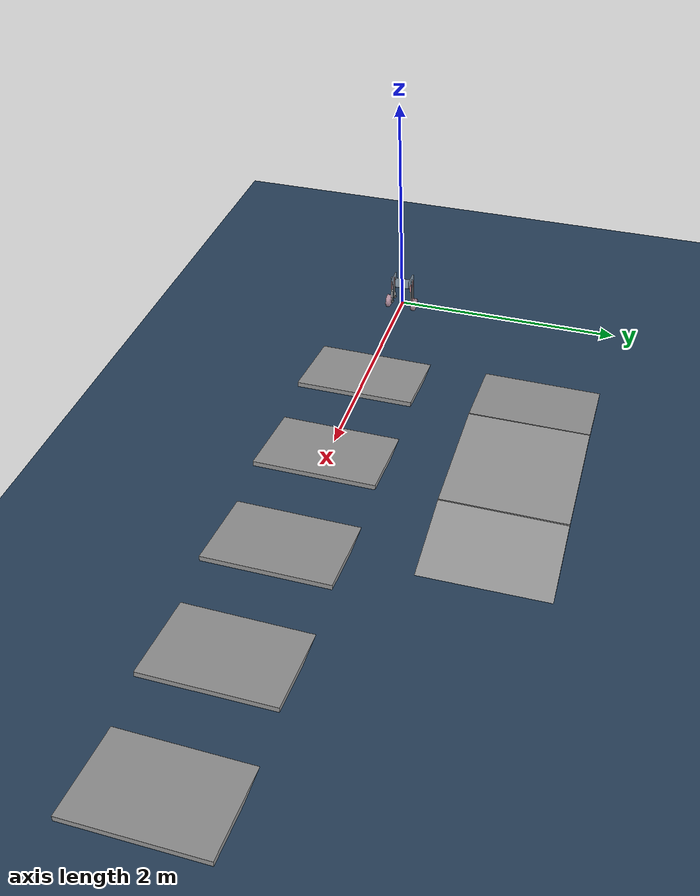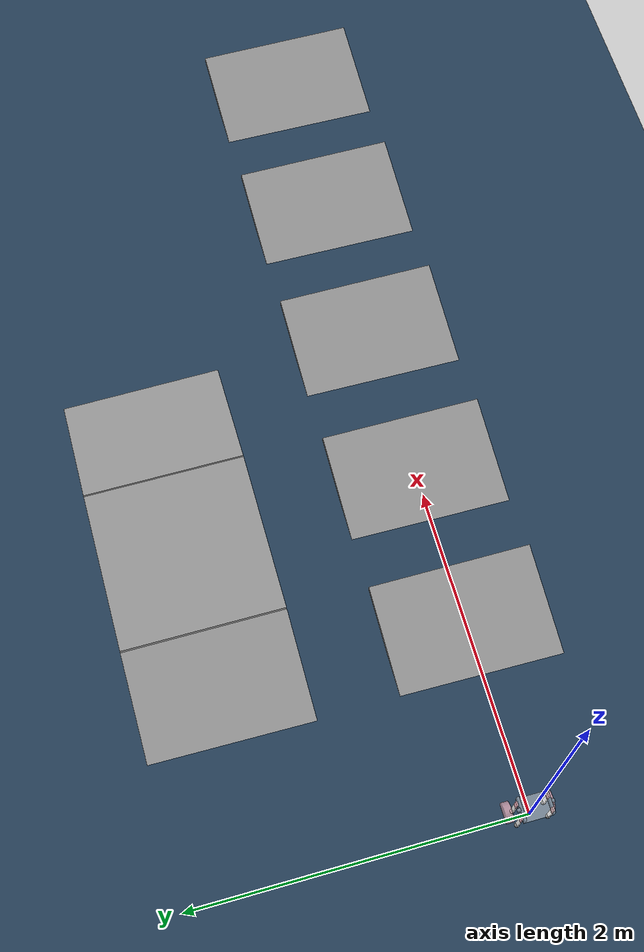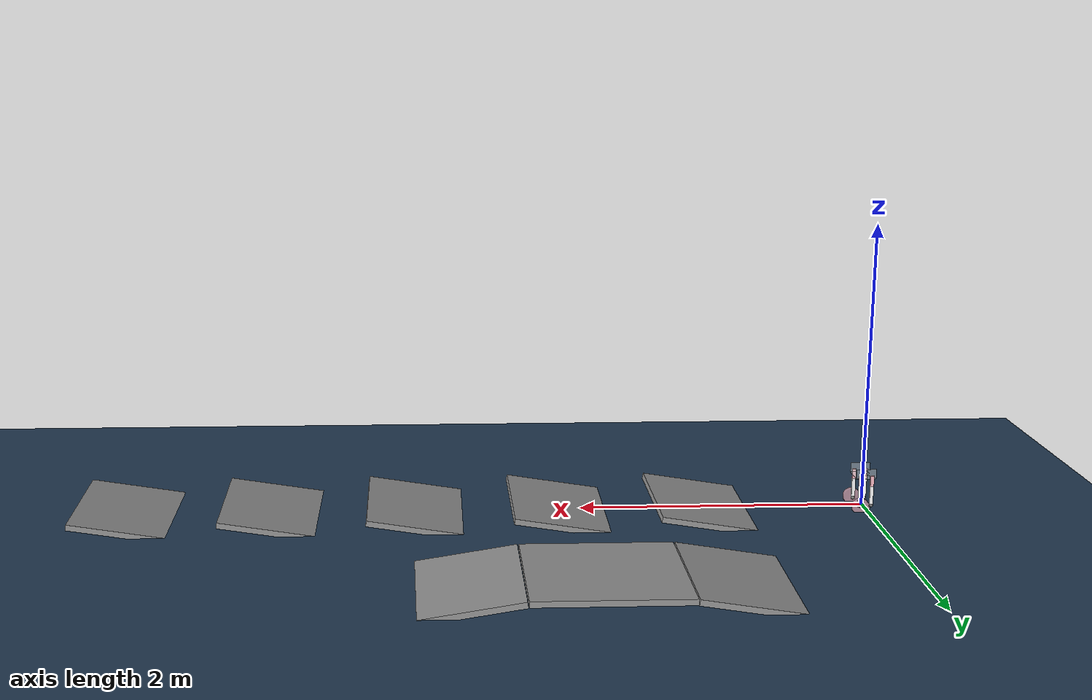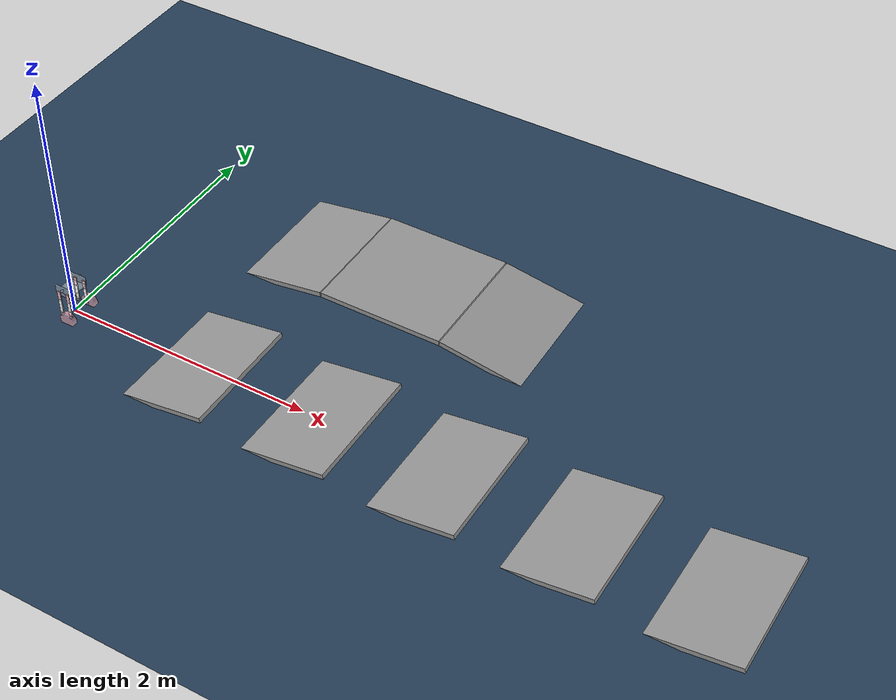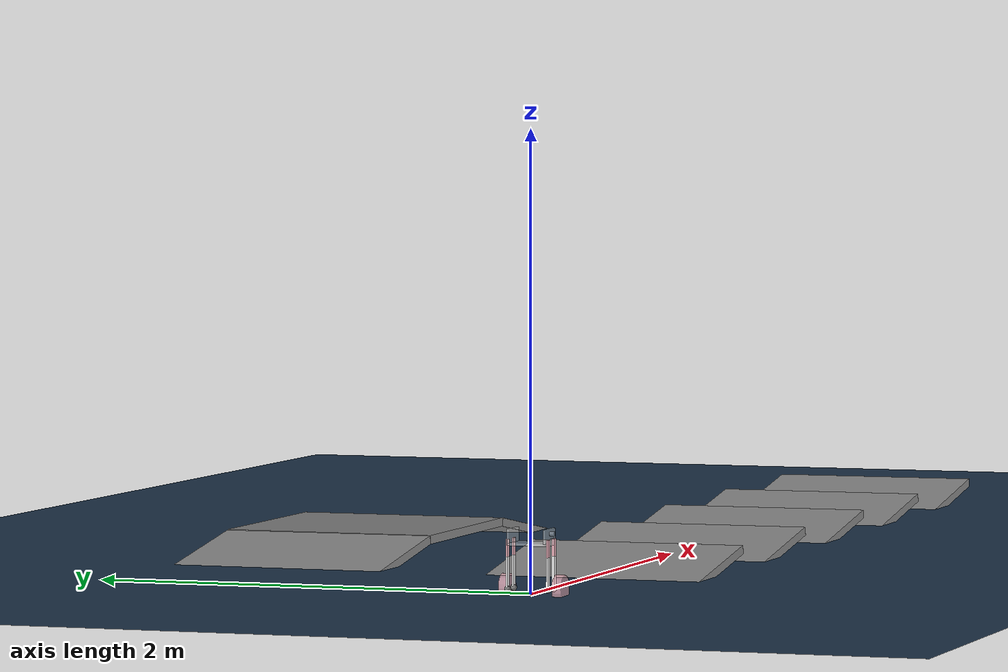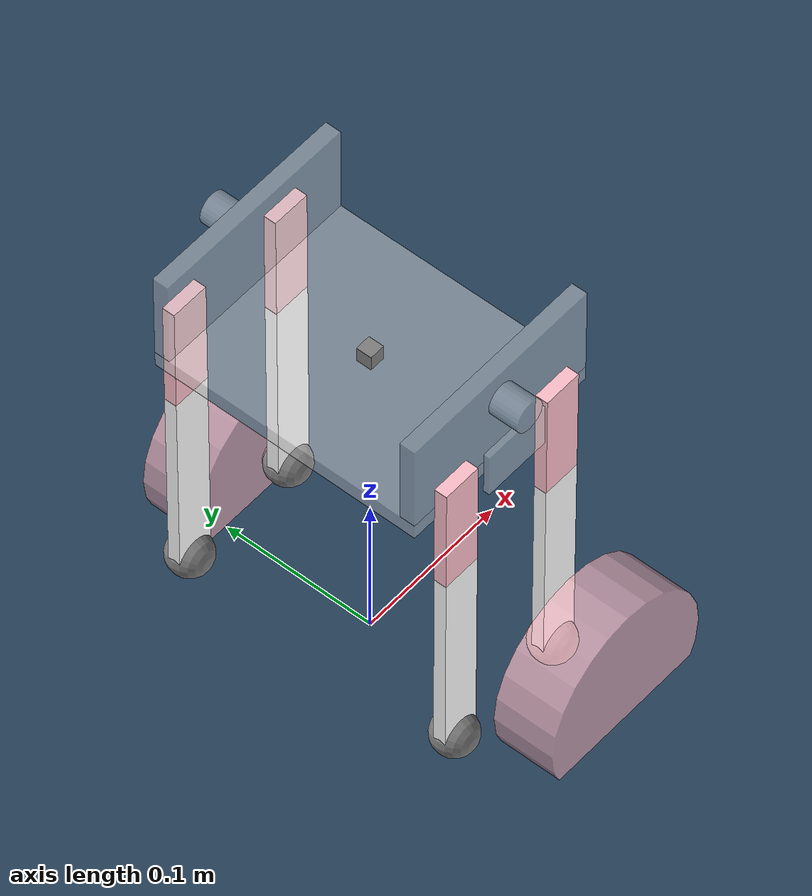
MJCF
<?xml version="1.0" encoding="utf-8"?>
<mujoco model="wheel_bipedal_robot_v1">
  <compiler angle="radian" autolimits="true"/>
  <option timestep="0.002" iterations="50" tolerance="1e-10"/>

  <asset>
    <texture name="texplane" type="2d" builtin="checker" rgb1=".2 .3 .4" rgb2=".1 .2 .3" width="512" height="512" mark="none"/>
    <material name="matplane" reflectance="0.2" texture="texplane" texrepeat="1 1" texuniform="true"/>
  </asset>
  <include file="obstacles.xml"/>
  <worldbody>
    <geom name="floor" pos="0 0 0" size="0 0 0.5" type="plane" material="matplane" condim="3"/>
    <light directional="true" diffuse=".8 .8 .8" specular=".2 .2 .2" pos="0 0 5" dir="0 0 -1"/>
    <!-- 机器人启动时候的支撑块 -->
    <body name="torso" pos="0.0 0.0 0.25">
      <freejoint />
      <site name="imu"  type="box" pos="0 0 -0.02" size="0.005 0.005 0.005"/>
      <geom name="torso_base" type="box" mass="0.823" pos="0 0 -0.03" size="0.068 0.0875 0.005" rgba="1 1 1 0.4" />
      <geom name="torso_front" type="box" mass="0.824" pos="0.0 0.0825 0.005" size="0.068 0.005 0.03" rgba="1 1 1 0.4" />
      <geom name="torso_back" type="box" mass="0.824" pos="0.0 -0.0825 0.005" size="0.068 0.005 0.03" rgba="1 1 1 0.4" />

      <!-- ==================== 物理限位块（已打开碰撞，确保参与接触限制） ==================== -->
      <body name="right_limit1" pos="0.0 -0.0915 0.015" quat="0.70710678 0.70710678 0.0 0.0">
        <geom type="cylinder"  name="torso_right_limit1" mass="0.005" pos="0.0 0.0 0.005" size="0.01 0.01 0.01" rgba="1 1 1 0.4" group="0" condim="3"/>
      </body>
      <body name="right_limit2" pos="0.0 -0.0915 -0.02" quat="0.70710678 0.70710678 0.0 0.0">
        <geom type="box" name="torso_right_limit2" mass="0.005" pos="0.0 0.0 0.005" size="0.022 0.015 0.002" rgba="1 1 1 0.4" group="0" condim="3"/>
      </body>
      <body name="left_limit1" pos="0.0 0.0915 0.015" quat="0.70710678 0.70710678 0.0 0.0">
        <geom type="cylinder" name="torso_left_limit1" mass="0.005" pos="0.0 0.0 -0.005" size="0.01 0.01 0.01" rgba="1 1 1 0.4" group="0" condim="3"/>
      </body>
      <body name="left_limit2" pos="0.0 0.0915 -0.02" quat="0.70710678 0.70710678 0.0 0.0">
        <geom type="box" name="torso_left_limit2" mass="0.005" pos="0.0 0.0 0.003" size="0.022 0.015 0.002" rgba="1 1 1 0.4" group="0" condim="3"/>
      </body>

      <!-- ==================== 右腿 1 ==================== -->
      <body name="right_up_leg_1" pos="0.04 -0.0915 -0.01" quat="4.32978028e-17 -4.32978028e-17  7.07106781e-01 -7.07106781e-01">
        <joint name="joint_right_phi1" pos="0 0 0" axis="0 0 1" damping="0.266" frictionloss="0.005" />
        <geom type="box" mass="0.01914" pos="0.0 0.0375 0.0" size="0.0125 0.0375 0.004" rgba="1 0.752941 0.796078 1" />

        <body name="right_down_leg_1" pos="0.0 0.075 0.0">
          <joint name="right_down_1" pos="0 0 0" axis="0 0 1" ref="0.5"/>
          <geom type="box" mass="0.02314" pos="0.0 0.07 0.0" size="0.0125 0.07 0.004" rgba="1 1 1 1" />
          <site name="right_down_connect_1" size="0.014" pos="0.0 0.14 0.0"/>

          <body name="right_wheel" pos="0.0 0.14 0.03">
            <joint name="right_wheel_torque" pos="0 0 0" axis="0 0 1" damping="0.0597" frictionloss="0.001" />
            <geom name="right_wheel_geom" type="cylinder" mass="0.6" pos="0.0 0.0 0.0" size="0.06 0.02" rgba="1 0.752941 0.796078 0.7" />
          </body>
        </body>
      </body>

      <!-- ==================== 右腿 2 ==================== -->
      <body name="right_up_leg_2" pos="-0.04 -0.0915 -0.01" quat="4.32978028e-17 -4.32978028e-17  7.07106781e-01 -7.07106781e-01">
        <joint name="joint_right_phi4" pos="0 0 0" axis="0 0 1" damping="0.266" frictionloss="0.005" />
        <geom type="box" mass="0.02" pos="0.0 0.0375 0.0" size="0.0125 0.0375 0.004" rgba="1 0.752941 0.796078 1" />

        <body name="right_down_leg_2" pos="0.0 0.075 0.0">
          <joint name="right_down_2" pos="0 0 0" axis="0 0 1"/>
          <geom type="box" mass="0.02314" pos="0.0 0.07 0.0" size="0.0125 0.07 0.004" rgba="1 1 1 1" />
          <site name="right_down_connect_2" size="0.014" pos="0.0 0.14 0.0"/>
        </body>
      </body>

      <!-- ==================== 左腿 1 ==================== -->
      <body name="left_up_leg_1" pos="0.04 0.0915 -0.01" quat="4.32978028e-17 -4.32978028e-17 -7.07106781e-01 -7.07106781e-01">
        <joint name="joint_left_phi1" pos="0 0 0" axis="0 0 1" damping="0.266" frictionloss="0.005" />
        <geom type="box" mass="0.01914" pos="0.0 -0.0375 0.0" size="0.0125 0.0375 0.004" rgba="1 0.752941 0.796078 1" />

        <body name="left_down_leg_1" pos="0.0 -0.075 0.0">
          <joint name="left_down_1" pos="0 0 0" axis="0 0 1"/>
          <geom type="box" mass="0.02314" pos="0.0 -0.07 0.0" size="0.0125 0.07 0.004" rgba="1 1 1 1" />
          <site name="left_down_connect_1" size="0.014" pos="0.0 -0.14 0.0"/>

          <body name="left_wheel" pos="0.0 -0.14 0.03">
            <joint name="left_wheel_torque" pos="0 0 0" axis="0 0 1" damping="0.0597" frictionloss="0.001" />
            <geom name="left_wheel_geom" type="cylinder" mass="0.6" pos="0.0 0.0 0.0" size="0.06 0.02" rgba="1 0.752941 0.796078 0.7" />
          </body>
        </body>
      </body>

      <!-- ==================== 左腿 2 ==================== -->
      <body name="left_up_leg_2" pos="-0.04 0.0915 -0.01" quat="4.32978028e-17 -4.32978028e-17 -7.07106781e-01 -7.07106781e-01">
        <joint name="joint_left_phi4" pos="0 0 0" axis="0 0 1" damping="0.266" frictionloss="0.005" />
        <geom type="box" mass="0.02" pos="0.0 -0.0375 0.0" size="0.0125 0.0375 0.004" rgba="1 0.752941 0.796078 1" />

        <body name="left_down_leg_2" pos="0.0 -0.075 0.0">
          <joint name="left_down_2" pos="0 0 0" axis="0 0 1"/>
          <geom type="box" mass="0.02314" pos="0.0 -0.07 0.0" size="0.0125 0.07 0.004" rgba="1 1 1 1" />
          <site name="left_down_connect_2" size="0.014" pos="0.0 -0.14 0.0"/>
        </body>
      </body>

    </body>
  </worldbody>

  <equality>
    <weld site1="right_down_connect_1" site2="right_down_connect_2" />
    <weld site1="left_down_connect_1" site2="left_down_connect_2" />
  </equality>

  <contact>
    <exclude body1="torso" body2="right_up_leg_1"/>
    <exclude body1="torso" body2="left_up_leg_1"/>

    <exclude body1="right_up_leg_1" body2="right_down_leg_2"/>
    <exclude body1="left_up_leg_1" body2="left_down_leg_2"/>

    <!-- 注意：此处保留原有关节屏蔽，但绝不屏蔽这四个 limit 刚体，使其物理限位生效 -->
    <exclude body1="left_down_leg_1" body2="right_wheel"/>
    <exclude body1="left_down_leg_2" body2="right_wheel"/>

    <exclude body1="right_down_leg_1" body2="left_wheel"/>
    <exclude body1="right_down_leg_2" body2="left_wheel"/>
  </contact>

  <actuator>
    <motor joint="joint_right_phi1" name="right_phi1" ctrlrange="-6.0 6.0" />
    <motor joint="joint_right_phi4" name="right_phi4" ctrlrange="-6.0 6.0" />
    <motor joint="joint_left_phi1"  name="left_phi1"  ctrlrange="-6.0 6.0" />
    <motor joint="joint_left_phi4"  name="left_phi4"  ctrlrange="-6.0 6.0" />

    <motor joint="right_wheel_torque"  name="right_torque"  ctrlrange="-2.0 2.0" />
    <motor joint="left_wheel_torque"  name="left_torque"  ctrlrange="-2.0 2.0" />

  </actuator>

  <sensor>
    <!-- 准备六个电机的编码器 + imu的四元数 角速度 加速度 -->
    <jointpos name="right1_pos" joint="joint_right_phi1" />
    <jointvel name="right1_vel" joint="joint_right_phi1" />
    <jointpos name="right2_pos" joint="joint_right_phi4" />
    <jointvel name="right2_vel" joint="joint_right_phi4" />
    <jointpos name="rightwheel_pos" joint="right_wheel_torque" />
    <jointvel name="rightwheel_vel" joint="right_wheel_torque" />

    <jointpos name="left1_pos" joint="joint_left_phi1" />
    <jointvel name="left1_vel" joint="joint_left_phi1" />
    <jointpos name="left2_pos" joint="joint_left_phi4" />
    <jointvel name="left2_vel" joint="joint_left_phi4" />
    <jointpos name="leftwheel_pos" joint="left_wheel_torque" />
    <jointvel name="leftwheel_vel" joint="left_wheel_torque" />

    <framequat name="orientation" objtype="site" noise="0.001" objname="imu" />
    <framepos name="position" objtype="site" noise="0.001" objname="imu" />

    <gyro name="angular_vel" site="imu" noise="0.005" cutoff="34.9" />
    <accelerometer name="linear_accel" site="imu" noise="0.005" cutoff="157" />
    <velocimeter name="linear_vel" site="imu" noise="0.001" cutoff="30" />
    <magnetometer name="magnetometer" site="imu" />
  </sensor>
</mujoco>

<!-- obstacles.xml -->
<mujoco model="adjustable_angle_ramp">
    <asset>
        <!-- 斜坡材质，方便看清 -->
        <material name="ramp_mat" rgba="0.6 0.6 0.6 1" />
    </asset>

    <worldbody>
        <body name="up" pos="1.0 1.5 0.0" euler="3.14 0.15722222 0">
            <!--
                size 里的三个数分别是: [半长, 半宽, 半厚度]
                这里把厚度设得很薄 (0.02)，长宽设大，它就像一块可以任意倾斜的木板斜坡
            -->
            <geom name="up"
                  type="box"
                  size="0.5 0.5 0.02"
                  material="ramp_mat" />
        </body>
        <body name="mid" pos="2.0 1.5 0.08">
            <!--
                size 里的三个数分别是: [半长, 半宽, 半厚度]
                这里把厚度设得很薄 (0.02)，长宽设大，它就像一块可以任意倾斜的木板斜坡
            -->
            <geom name="mid"
                  type="box"
                  size="0.5 0.5 0.02"
                  material="ramp_mat" />
        </body>
        <body name="down" pos="3 1.5 0.0" euler="3.14 -0.15722222 0">
            <!--
                size 里的三个数分别是: [半长, 半宽, 半厚度]
                这里把厚度设得很薄 (0.02)，长宽设大，它就像一块可以任意倾斜的木板斜坡
            -->
            <geom name="down"
                  type="box"
                  size="0.5 0.5 0.02"
                  material="ramp_mat" />
        </body>
        <!--
            【调节核心】修改 euler 的第二个参数（即围绕 Y 轴旋转），就能改变斜坡角度
            比如: "0 15 0" 代表坡度为 15 度，"0 30 0" 代表 30 度
            pos 可以调整斜坡在主场景中的整体位置
        -->
        <body name="ramp_body1" pos="1.0 0 0.0" euler="3.14 0.15722222 0">
            <!--
                size 里的三个数分别是: [半长, 半宽, 半厚度]
                这里把厚度设得很薄 (0.02)，长宽设大，它就像一块可以任意倾斜的木板斜坡
            -->
            <geom name="ramp_surface1"
                  type="box"
                  size="0.5 0.5 0.02"
                  material="ramp_mat" />
        </body>

        <body name="ramp_body2" pos="2.0 0 0.0" euler="3.14 0.15722222 0">
            <!--
                size 里的三个数分别是: [半长, 半宽, 半厚度]
                这里把厚度设得很薄 (0.02)，长宽设大，它就像一块可以任意倾斜的木板斜坡
            -->
            <geom name="ramp_surface2"
                  type="box"
                  size="0.5 0.5 0.02"
                  material="ramp_mat" />
        </body>

        <body name="ramp_body3" pos="3.0 0 0.0" euler="3.14 0.15722222 0">
            <!--
                size 里的三个数分别是: [半长, 半宽, 半厚度]
                这里把厚度设得很薄 (0.02)，长宽设大，它就像一块可以任意倾斜的木板斜坡
            -->
            <geom name="ramp_surface3"
                  type="box"
                  size="0.5 0.5 0.02"
                  material="ramp_mat" />
        </body>

        <body name="ramp_body4" pos="4.0 0 0.0" euler="3.14 0.15722222 0">
            <!--
                size 里的三个数分别是: [半长, 半宽, 半厚度]
                这里把厚度设得很薄 (0.02)，长宽设大，它就像一块可以任意倾斜的木板斜坡
            -->
            <geom name="ramp_surface4"
                  type="box"
                  size="0.5 0.5 0.02"
                  material="ramp_mat" />
        </body>

        <body name="ramp_body5" pos="5.0 0 0.0" euler="3.14 0.15722222 0">
            <!--
                size 里的三个数分别是: [半长, 半宽, 半厚度]
                这里把厚度设得很薄 (0.02)，长宽设大，它就像一块可以任意倾斜的木板斜坡
            -->
            <geom name="ramp_surface5"
                  type="box"
                  size="0.5 0.5 0.02"
                  material="ramp_mat" />
        </body>
    </worldbody>
</mujoco>
